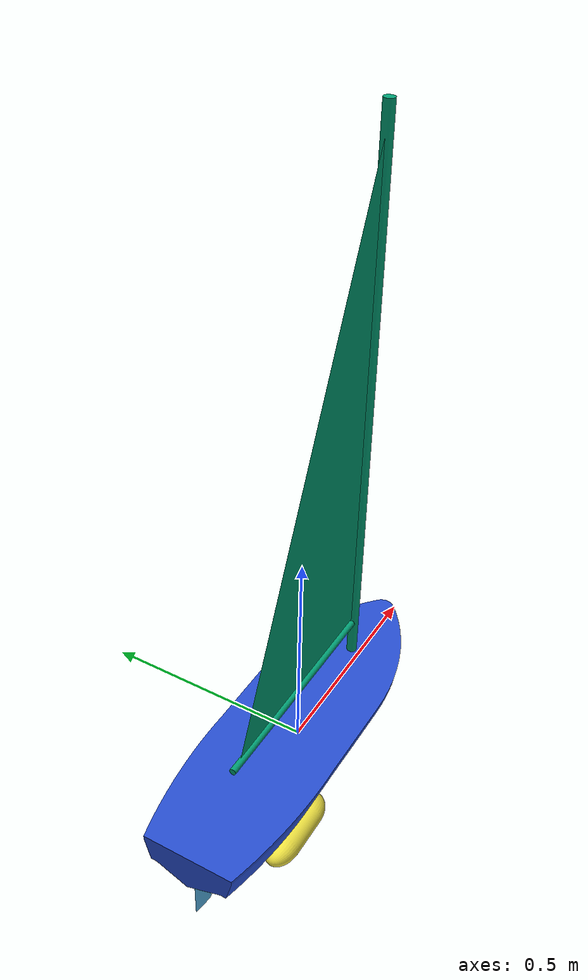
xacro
<?xml version="1.0"?>

<robot name="sailboat" xmlns:xacro="http://www.ros.org/wiki/xacro">

    <xacro:property name="PI" value="3.1415926535897931"/>
    <xacro:property name="disp" value="0.0"/>

    <!-- HULL DESCRIPTION -->
    <link name="base_link">
        <visual>
          <origin rpy="0 0 0" xyz="0 0 ${disp}"/>
          <geometry>
            <mesh filename="package://sailboat_description/mesh/pt90.stl"/>
          </geometry>
          <material name="blue"/>
        </visual>

        <collision>
          <origin rpy="0 0 0" xyz="0 0 ${disp}"/>
          <geometry>
            <mesh filename="package://sailboat_description/mesh/pt90.stl"/>
          </geometry>
        </collision>

        <inertial>
          <origin rpy="0 0 0" xyz="0 0 ${disp}"/>
          <mass value="50.0"/>
          <inertia ixx="0.3" ixy="0.0" ixz="0.0" iyy="3.5" iyz="0.0" izz="3.6"/>
        </inertial>
    </link>

    <!-- RUDDER DESCRIPTION -->
    <link name="rudder">
            <inertial>
                <mass value="1.0" />
                <inertia
                  ixx="0.0"
                  ixy="0.0"
                  iyy="0.0"
                  ixz="0.0"
                  iyz="0.0"
                  izz="0.0"/>
            </inertial>

            <collision name="collision">
                <geometry>
                  <mesh filename="package://sailboat_description/mesh/rudder.stl"/>
                </geometry>
                <origin rpy="0 0 0" xyz="0.0 0 0"/>
            </collision>

            <visual name="visual">
                <geometry>
                  <mesh filename="package://sailboat_description/mesh/rudder.stl"/>
                </geometry>
                <origin rpy="0 0 0" xyz="0.0 0 0"/>
            </visual>
        </link>

        <joint name="rudder_joint" type="revolute">
            <parent link="base_link"/>
            <child link="rudder"/>
            <origin rpy="0 0 0" xyz="-0.4 0 0"/>
            <dynamics damping="1.0"/>
            <axis xyz="0 0 1"/>
            <limit effort="50" velocity="5" lower="-${PI/3}" upper="${PI/3}" />
        </joint>

    <!-- SAIL DESCRIPTION -->
    <link name="sail">
		<inertial>
			<mass value="2.0" />
			<inertia
			  ixx="0.0"
			  ixy="0.0"
			  iyy="0.0"
			  ixz="0.0"
			  iyz="0.0"
			  izz="0.0"/>
		</inertial>

	    <collision name="collision">
            <geometry>
              <mesh filename="package://sailboat_description/mesh/sail.dae"/>
            </geometry>
            <origin rpy="0 0 0" xyz="0.0 0 0.0"/>
	    </collision>

	    <visual name="visual">
          <geometry>
            <mesh filename="package://sailboat_description/mesh/sail.dae"/>
          </geometry>
            <origin rpy="0 0 0" xyz="0.0 0 0.0"/>
	    </visual>

    </link>

    <joint name="sail_joint" type="revolute">
        <parent link="base_link"/>
        <child link="sail"/>
        <origin rpy="0 0 0" xyz="0.25 0 0"/>
        <dynamics damping="1.0"/>
        <axis xyz="0 0 1"/>
        <limit effort="30" velocity="5" lower="-${PI/2}" upper="${PI/2}" />
    </joint>

<!-- KEEL DESCRIPTION -->
    <link name="keel">
        <inertial>
            <mass value="10.0" xyz="0 0 0" />
            <inertia
              ixx="0.05"
              ixy="0.0"
              iyy="0.05"
              ixz="0.0"
              iyz="0.0"
              izz="0.005"/>
        </inertial>

        <collision name="collision">
            <geometry>
              <mesh filename="package://sailboat_description/mesh/keel.stl"/>
            </geometry>
            <origin rpy="0 0 0" xyz="0 0 0"/>
        </collision>

        <visual name="visual">
            <geometry>
              <mesh filename="package://sailboat_description/mesh/keel.stl"/>
            </geometry>
            <origin rpy="0 0 0" xyz="0 0 0"/>
        </visual>
    </link>

     <joint name="keel_joint" type="revolute">
        <parent link="base_link"/>
        <child link="keel"/>
        <origin rpy="0 0 0" xyz="0 0 0"/>
        <axis xyz="0 0 1"/>
        <limit effort="50" velocity="0" lower="0" upper="0" />
 	</joint>

  <gazebo>
    <plugin name="gazebo_ros_control" filename="libgazebo_ros_control.so">
      <robotNamespace>/sailboat</robotNamespace>
    </plugin>

	<plugin name="lifting_surface1" filename="libLiftDragPlugin.so">

    <!-- taken from the lift curve figure -->
    <!-- alpha_0 is 5 degrees -->
    <a0>0.08727</a0>
    <!-- alpha_stall is 19.3 degrees -->
    <alpha_stall>0.3368</alpha_stall>
    <!-- slope of the lift curve to the left of the stall angle -->
    <cla>5.418</cla>
    <!-- slope of the lift curve to the right of the stall angle -->
    <cla_stall>-2.1419</cla_stall>

    <!-- below are just random values in this example -->
    <cda>0.0</cda>
    <cda_stall>0.0</cda_stall>
    <cma>0.0</cma>
    <cma_stall>0.0</cma_stall>
    <area>3</area>
    <fluid_density>1.2041</fluid_density>
    <forward>-1 0 0</forward>
    <upward>0 -1 0</upward>
    <cp>0 0 1</cp>
    <link_name>sail</link_name>
    <radial_symmetry>false</radial_symmetry>
  </plugin>

  <plugin name="lifting_surface2" filename="libLiftDragPlugin.so">

        <!-- taken from the lift curve figure -->
        <!-- alpha_0 is 5 degrees -->
        <a0>0.08727</a0>
        <!-- alpha_stall is 19.3 degrees -->
        <alpha_stall>0.3368</alpha_stall>
        <!-- slope of the lift curve to the left of the stall angle -->
        <cla>5.418</cla>
        <!-- slope of the lift curve to the right of the stall angle -->
        <cla_stall>-2.1419</cla_stall>

        <!-- below are just random values in this example -->
        <cda>0.0</cda>
        <cda_stall>0.0</cda_stall>
        <cma>0.0</cma>
        <cma_stall>0.0</cma_stall>
        <area>3</area>
        <fluid_density>1.2041</fluid_density>
        <forward>-1 0 0</forward>
        <upward>0 -1 0</upward>
        <cp>0 0 1</cp>
        <link_name>rudder</link_name>
        <radial_symmetry>false</radial_symmetry>
      </plugin>

  </gazebo>

  <transmission name="sail_trans">
    <type>transmission_interface/SimpleTransmission</type>
    <actuator name="sail_act">
      <mechanicalReduction>1</mechanicalReduction>
    </actuator>
    <joint name="sail_joint">
      <hardwareInterface>hardware_interface/PositionJointInterface</hardwareInterface>
    </joint>
  </transmission>

  <transmission name="rudder_trans">
    <type>transmission_interface/SimpleTransmission</type>
    <actuator name="rudder_act">
      <mechanicalReduction>1</mechanicalReduction>
    </actuator>
    <joint name="rudder_joint">
      <hardwareInterface>hardware_interface/PositionJointInterface</hardwareInterface>
    </joint>
  </transmission>

</robot>
